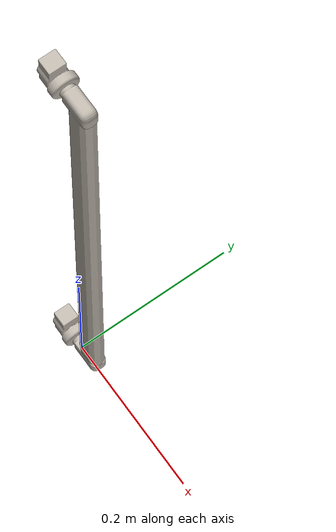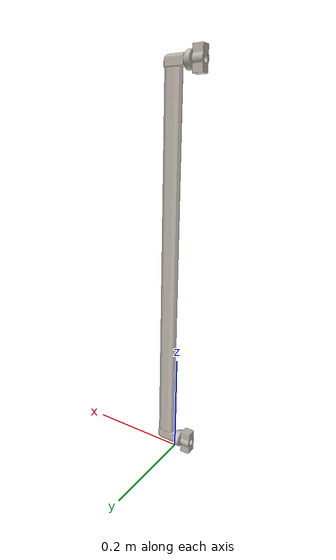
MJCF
<mujoco model="iss_handrail">
  <compiler assetdir="../.." />
  <asset>
    <mesh name="part_0" file="space/iss_handrail/part_0.obj" />
    <material name="material_0" rgba="1 1 1 1" shininess="0.2" texture="texture_0" />
    <texture name="texture_0" type="2d" file="space/iss_handrail/diffuse_0.png" />
    <mesh name="part_1" file="space/iss_handrail/part_1.obj" />
    <material name="material_1" rgba="1 1 1 1" shininess="0.2" texture="texture_1" />
    <texture name="texture_1" type="2d" file="space/iss_handrail/diffuse_1.png" />
  </asset>
  <worldbody>
    <body name="asset_root">
      <inertial pos="0 0 0.39172349870204926" mass="0.1" diaginertia="0.00512402404 0.00516591573 6.01198141e-05" />
      <geom name="part_0" type="mesh" mesh="part_0" material="material_0" contype="0" conaffinity="0" mass="0" />
      <geom name="part_1" type="mesh" mesh="part_1" material="material_1" contype="0" conaffinity="0" mass="0" />
    </body>
  </worldbody>
</mujoco>
